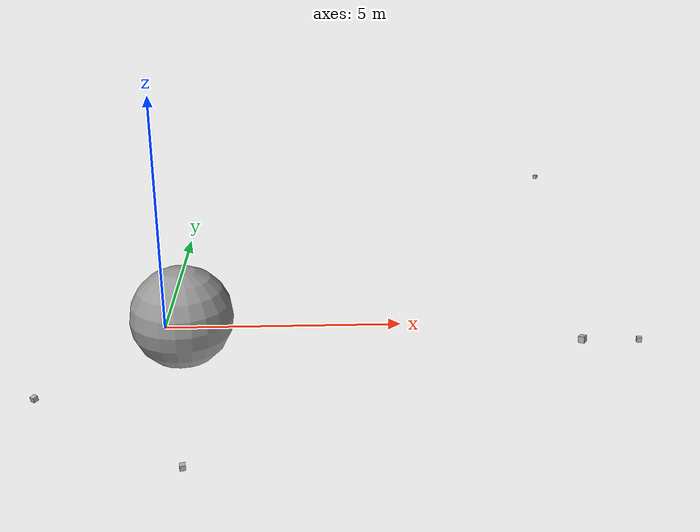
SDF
<sdf version="1.6">
 <world name="default">
  <gravity>0 0 0</gravity>
  <magnetic_field>6e-06 2.3e-05 -4.2e-05</magnetic_field>
  <atmosphere type="adiabatic"/>
  <physics name="default_physics" default="0" type="ode">
   <max_step_size>0.001</max_step_size>
   <real_time_factor>1</real_time_factor>
   <real_time_update_rate>1000</real_time_update_rate>
  </physics>
  <scene><ambient>0.4 0.4 0.4 1</ambient><background>0.7 0.7 0.7 1</background><shadows>1</shadows></scene>
  <spherical_coordinates>
   <surface_model>EARTH_WGS84</surface_model>
   <latitude_deg>0</latitude_deg>
   <longitude_deg>0</longitude_deg>
   <elevation>0</elevation>
   <heading_deg>0</heading_deg>
  </spherical_coordinates>
  <model name="unit_sphere_0">
   <pose>0.446472 -0.484614 0.5 0 -0 0</pose>
   <link name="link">
    <inertial>
     <mass>1</mass>
     <inertia><ixx>0.1</ixx><ixy>0</ixy><ixz>0</ixz><iyy>0.1</iyy><iyz>0</iyz><izz>0.1</izz></inertia>
    </inertial>
    <collision name="collision"><geometry><sphere><radius>1.06518</radius></sphere></geometry></collision>
    <visual name="visual">
     <geometry><sphere><radius>1.06518</radius></sphere></geometry>
     <material>
      <script><name>Gazebo/Grey</name><uri>file://media/materials/scripts/gazebo.material</uri></script>
     </material>
    </visual>
   </link>
  </model>
  <model name="camera">
   <link name="link">
    <gravity>0</gravity>
    <pose>0.05 0.05 0.05 0 -0 0</pose>
    <inertial>
     <mass>0.1</mass>
     <inertia><ixx>1</ixx><ixy>0</ixy><ixz>0</ixz><iyy>1</iyy><iyz>0</iyz><izz>1</izz></inertia>
    </inertial>
    <visual name="visual"><geometry><box><size>0.1 0.1 0.1</size></box></geometry></visual>
    <sensor name="camera" type="camera">
     <camera name="__default__">
      <horizontal_fov>1.047</horizontal_fov>
      <image><width>320</width><height>240</height></image>
      <clip><near>0.1</near><far>100</far></clip>
     </camera>
     <always_on>1</always_on>
     <update_rate>30</update_rate>
     <visualize>1</visualize>
     <plugin name="camera_controller" filename="libgazebo_ros_camera.so">
      <alwaysOn>true</alwaysOn>
      <updateRate>0.0</updateRate>
      <cameraName>camera</cameraName>
      <imageTopicName>image_raw</imageTopicName>
      <cameraInfoTopicName>camera_info</cameraInfoTopicName>
      <frameName>camera_link</frameName>
      <distortionK1>0.0</distortionK1>
      <distortionK2>0.0</distortionK2>
      <distortionK3>0.0</distortionK3>
      <distortionT1>0.0</distortionT1>
      <distortionT2>0.0</distortionT2>
     </plugin>
    </sensor>
   </link>
   <pose>-1.96194 -2.98698 0 0 -0.165295 0.929801</pose>
  </model>
  <model name="camera_0">
   <link name="link">
    <gravity>0</gravity>
    <pose>0.05 0.05 0.05 0 -0 0</pose>
    <inertial>
     <mass>0.1</mass>
     <inertia><ixx>1</ixx><ixy>0</ixy><ixz>0</ixz><iyy>1</iyy><iyz>0</iyz><izz>1</izz></inertia>
    </inertial>
    <visual name="visual"><geometry><box><size>0.1 0.1 0.1</size></box></geometry></visual>
    <sensor name="camera" type="camera">
     <camera name="__default__">
      <horizontal_fov>1.047</horizontal_fov>
      <image><width>320</width><height>240</height></image>
      <clip><near>0.1</near><far>100</far></clip>
     </camera>
     <always_on>1</always_on>
     <update_rate>30</update_rate>
     <visualize>1</visualize>
     <plugin name="camera_controller" filename="libgazebo_ros_camera.so">
      <alwaysOn>true</alwaysOn>
      <updateRate>0.0</updateRate>
      <cameraName>camera_0</cameraName>
      <imageTopicName>image_raw</imageTopicName>
      <cameraInfoTopicName>camera_info</cameraInfoTopicName>
      <frameName>camera_link</frameName>
      <distortionK1>0.0</distortionK1>
      <distortionK2>0.0</distortionK2>
      <distortionK3>0.0</distortionK3>
      <distortionT1>0.0</distortionT1>
      <distortionT2>0.0</distortionT2>
     </plugin>
    </sensor>
   </link>
   <pose>1.03666 -5.06912 -0.103076 0 -0.045568 1.77014</pose>
  </model>
  <model name="camera_1">
   <link name="link">
    <gravity>0</gravity>
    <pose>0.05 0.05 0.05 0 -0 0</pose>
    <inertial>
     <mass>0.1</mass>
     <inertia><ixx>1</ixx><ixy>0</ixy><ixz>0</ixz><iyy>1</iyy><iyz>0</iyz><izz>1</izz></inertia>
    </inertial>
    <visual name="visual"><geometry><box><size>0.1 0.1 0.1</size></box></geometry></visual>
    <sensor name="camera" type="camera">
     <camera name="__default__">
      <horizontal_fov>1.047</horizontal_fov>
      <image><width>320</width><height>240</height></image>
      <clip><near>0.1</near><far>100</far></clip>
     </camera>
     <always_on>1</always_on>
     <update_rate>30</update_rate>
     <visualize>1</visualize>
     <plugin name="camera_controller" filename="libgazebo_ros_camera.so">
      <alwaysOn>true</alwaysOn>
      <updateRate>0.0</updateRate>
      <cameraName>camera_1</cameraName>
      <imageTopicName>image_raw</imageTopicName>
      <cameraInfoTopicName>camera_info</cameraInfoTopicName>
      <frameName>camera_link</frameName>
      <distortionK1>0.0</distortionK1>
      <distortionK2>0.0</distortionK2>
      <distortionK3>0.0</distortionK3>
      <distortionT1>0.0</distortionT1>
      <distortionT2>0.0</distortionT2>
     </plugin>
    </sensor>
   </link>
   <pose>7.37115 -5.53387 2.40401 0.046728 0.14645 2.48823</pose>
  </model>
  <model name="camera_2">
   <link name="link">
    <gravity>0</gravity>
    <pose>0.05 0.05 0.05 0 -0 0</pose>
    <inertial>
     <mass>0.1</mass>
     <inertia><ixx>1</ixx><ixy>0</ixy><ixz>0</ixz><iyy>1</iyy><iyz>0</iyz><izz>1</izz></inertia>
    </inertial>
    <visual name="visual"><geometry><box><size>0.1 0.1 0.1</size></box></geometry></visual>
    <sensor name="camera" type="camera">
     <camera name="__default__">
      <horizontal_fov>1.047</horizontal_fov>
      <image><width>320</width><height>240</height></image>
      <clip><near>0.1</near><far>100</far></clip>
     </camera>
     <always_on>1</always_on>
     <update_rate>30</update_rate>
     <visualize>1</visualize>
     <plugin name="camera_controller" filename="libgazebo_ros_camera.so">
      <alwaysOn>true</alwaysOn>
      <updateRate>0.0</updateRate>
      <cameraName>camera_2</cameraName>
      <imageTopicName>image_raw</imageTopicName>
      <cameraInfoTopicName>camera_info</cameraInfoTopicName>
      <frameName>camera_link</frameName>
      <distortionK1>0.0</distortionK1>
      <distortionK2>0.0</distortionK2>
      <distortionK3>0.0</distortionK3>
      <distortionT1>0.0</distortionT1>
      <distortionT2>0.0</distortionT2>
     </plugin>
    </sensor>
   </link>
   <pose>9.90613 -0.94826 0 0 -0 3.02152</pose>
  </model>
  <model name="camera_3">
   <link name="link">
    <gravity>0</gravity>
    <pose>0.05 0.05 0.05 0 -0 0</pose>
    <inertial>
     <mass>0.1</mass>
     <inertia><ixx>1</ixx><ixy>0</ixy><ixz>0</ixz><iyy>1</iyy><iyz>0</iyz><izz>1</izz></inertia>
    </inertial>
    <visual name="visual"><geometry><box><size>0.1 0.1 0.1</size></box></geometry></visual>
    <sensor name="camera" type="camera">
     <camera name="__default__">
      <horizontal_fov>1.047</horizontal_fov>
      <image><width>320</width><height>240</height></image>
      <clip><near>0.1</near><far>100</far></clip>
     </camera>
     <always_on>1</always_on>
     <update_rate>30</update_rate>
     <visualize>1</visualize>
     <plugin name="camera_controller" filename="libgazebo_ros_camera.so">
      <alwaysOn>true</alwaysOn>
      <updateRate>0.0</updateRate>
      <cameraName>camera_3</cameraName>
      <imageTopicName>image_raw</imageTopicName>
      <cameraInfoTopicName>camera_info</cameraInfoTopicName>
      <frameName>camera_link</frameName>
      <distortionK1>0.0</distortionK1>
      <distortionK2>0.0</distortionK2>
      <distortionK3>0.0</distortionK3>
      <distortionT1>0.0</distortionT1>
      <distortionT2>0.0</distortionT2>
     </plugin>
    </sensor>
   </link>
   <pose>10 10 0 0 0 -2.24506</pose>
  </model>
 </world>
</sdf>
